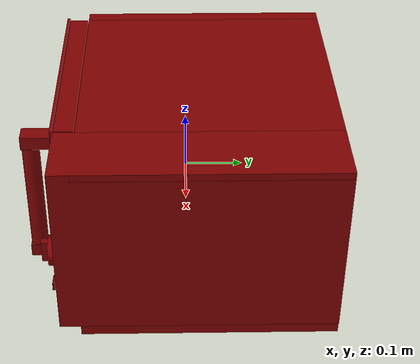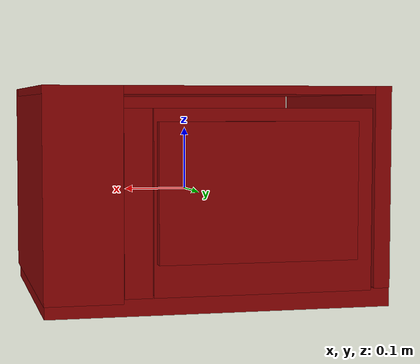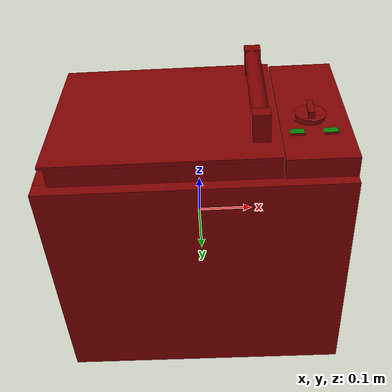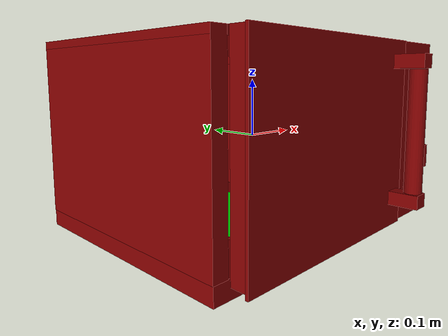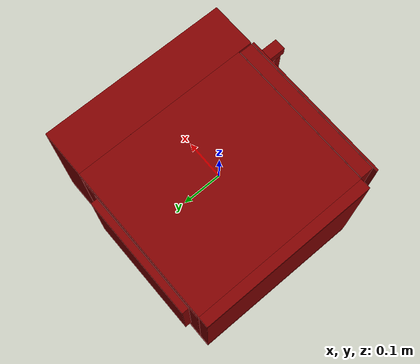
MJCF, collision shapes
<?xml version='1.0' encoding='UTF-8'?>
<mujoco model="model">
  <option timestep="0.002" gravity="0.0 0.0 -9.81"/>
  <compiler angle="radian"/>
  <asset>
    <mesh file="visuals/door.obj" name="door_vis"/>
    <mesh file="visuals/door_Clear.obj" name="door_Clear_vis"/>
    <mesh file="visuals/Body001.obj" name="Body001_vis"/>
    <mesh file="visuals/Button001.obj" name="Button001_vis"/>
    <mesh file="visuals/Button002.obj" name="Button002_vis"/>
    <mesh file="visuals/Disc001.obj" name="Disc001_vis"/>
    <mesh file="visuals/Knob001.obj" name="Knob001_vis"/>
    <texture file="visuals/T_BC001.png" name="Body001_material" type="2d"/>
    <material name="Body001_material" rgba="1 1 1 1.0" texture="Body001_material" shininess="0.4472135901451111" specular="2"/>
    <texture file="visuals/T_BC001.png" name="door_material" type="2d"/>
    <material name="door_material" rgba="1 1 1 1.0" texture="door_material" shininess="0.4472135901451111" specular="2"/>
    <material name="door_Clear_material" rgba="0.02614923194050789 0.02614923194050789 0.02614923194050789 0.8999999761581421" shininess="0.4472135901451111" specular="1"/>
    <texture file="visuals/T_BC001.png" name="Button001_material" type="2d"/>
    <material name="Button001_material" rgba="1 1 1 1.0" texture="Button001_material" shininess="0.4472135901451111" specular="1"/>
    <texture file="visuals/T_BC001.png" name="Button002_material" type="2d"/>
    <material name="Button002_material" rgba="1 1 1 1.0" texture="Button002_material" shininess="0.4472135901451111" specular="1"/>
    <texture file="visuals/T_BC001.png" name="Disc001_material" type="2d"/>
    <material name="Disc001_material" rgba="1 1 1 1.0" texture="Disc001_material" shininess="0.4472135901451111" specular="3"/>
    <texture file="visuals/T_BC001.png" name="Knob001_material" type="2d"/>
    <material name="Knob001_material" rgba="1 1 1 1.0" texture="Knob001_material" shininess="0.4472135901451111" specular="1"/>
  </asset>
  <default>
    <default class="visual">
      <geom conaffinity="0" contype="0" group="1" type="mesh"/>
    </default>
    <default class="collision">
      <geom group="0" rgba="0.5 0 0 0.5"/>
    </default>
    <default class="spawn">
      <geom group="0" rgba="1 1 1 0.5" contype="0" conaffinity="0"/>
      <site group="0" rgba="1 1 1 0.5"/>
    </default>
    <default class="region">
      <geom group="1" conaffinity="0" contype="0" rgba="0 1 0 0"/>
    </default>
  </default>
  <worldbody>
    <body>
      <body name="object">
        <geom class="collision" type="cylinder" pos="-0.06560337 -0.00000012 -0.12939638" size="0.12126452475786209 0.0008784863748587668" quat="1.0 0.0 0.0 0.0" name="tray" rgba="0 1 0 0.5"/>
        <geom class="collision" type="box" pos="0.16906899 -0.22274777 -0.08110909" size="0.011674713343381882 0.00020382273942232132 0.006713891867548227" quat="1.0 0.0 0.0 0.0" name="start_button" rgba="0.0 0.5 0 0.5"/>
        <geom class="collision" type="box" pos="0.22318500 -0.22250661 -0.08110908" size="0.011674663051962852 0.0002098405093420297 0.006713863927870989" quat="1.0 0.0 0.0 0.0" name="stop_button" rgba="0.0 0.5 0 0.5"/>
        <geom mesh="Body001_vis" type="mesh" solimp="0.998 0.998 0.001" solref="0.001 1" friction="0.95 0.3 0.1" class="visual" material="Body001_material"/>
        <geom class="collision" type="box" pos="0.20260483 0.02021611 0.00938672" size="0.057745762169361115 0.23350463807582855 0.15633134543895721" quat="1.0 0.0 0.0 0.0"/>
        <geom class="collision" type="box" pos="-0.24758852 0.03793809 0.01420471" size="0.012761605903506279 0.21578103303909302 0.15151327848434448" quat="1.0 0.0 0.0 0.0"/>
        <geom class="collision" type="box" pos="0.00000021 0.03793809 0.15949148" size="0.2603505253791809 0.21578089892864227 0.006225584540516138" quat="1.0 0.0 0.0 0.0"/>
        <geom class="collision" type="box" pos="0.12371288 0.03793808 -0.00341126" size="0.020814433693885803 0.21578072011470795 0.13651160895824432" quat="1.0 0.0 0.0 0.0"/>
        <geom class="collision" type="box" pos="-0.06453180 0.21609520 -0.00341126" size="0.1658237725496292 0.03762277588248253 0.13651145994663239" quat="1.0 0.0 0.0 0.0"/>
        <geom class="collision" type="box" pos="-0.05290046 0.26134306 0.01174506" size="0.14965619146823883 0.008506118319928646 0.10244238376617432" quat="1.0 0.0 0.0 0.0"/>
        <geom class="collision" type="box" pos="-0.00007009 0.03763168 -0.15069413" size="0.25970426201820374 0.21547333896160126 0.014608645811676979" quat="1.0 0.0 0.0 0.0"/>
        <body name="door">
          <joint axis="0.0 0.0 1.0" pos="-0.23949413 -0.19963638 0.00927292" limited="true" name="microjoint" range="-1.5707963267948966 0.0" type="hinge" damping="1" frictionloss="1" armature=".01" stiffness="0.05"/>
          <geom mesh="door_vis" type="mesh" solimp="0.998 0.998 0.001" solref="0.001 1" friction="0.95 0.3 0.1" class="visual" material="door_material"/>
          <geom class="collision" type="box" pos="-0.06565758 -0.21491098 0.01862302" size="0.146141916513443 0.0026013606693595648 0.0994877889752388" quat="1.0 0.0 0.0 0.0"/>
          <geom class="collision" type="box" pos="-0.04574286 -0.19574114 0.00922979" size="0.1876501590013504 0.016191832721233368 0.15648718178272247" quat="1.0 0.0 0.0 0.0"/>
          <geom class="collision" type="cylinder" pos="0.11001840 -0.25542687 0.01783517" size="0.014583306387066841 0.10020187497138977" quat="1.0 0.0 0.0 0.0" name="door_handle_main"/>
          <geom class="collision" type="box" pos="0.11032683 -0.24536870 0.13051552" size="0.014486672356724739 0.024532847106456757 0.011350457556545734" quat="1.0 0.0 0.0 0.0"/>
          <geom class="collision" type="box" pos="0.11032683 -0.24536870 -0.09487832" size="0.014486672356724739 0.024532847106456757 0.011350457556545734" quat="1.0 0.0 0.0 0.0"/>
          <geom class="collision" type="box" pos="-0.05075187 -0.21622051 0.00922979" size="0.1926591694355011 0.002439235569909215 0.15648718178272247" quat="1.0 0.0 0.0 0.0" name="door_main"/>
          <body name="door_Clear">
            <geom mesh="door_Clear_vis" type="mesh" solimp="0.998 0.998 0.001" solref="0.001 1" friction="0.95 0.3 0.1" class="visual" material="door_Clear_material"/>
            <geom class="collision" type="box" pos="-0.06565758 -0.21491098 0.01862302" size="0.146141916513443 0.0026013606693595648 0.0994877889752388" quat="1.0 0.0 0.0 0.0"/>
          </body>
        </body>
        <body name="Button001">
          <joint axis="0.0 1.0 0.0" pos="0.16906899 -0.21999532 -0.08110909" limited="true" name="Button001_joint" range="0.0 0.0025" type="slide" damping="1" frictionloss="1" armature=".01" stiffness="0.05"/>
          <geom mesh="Button001_vis" type="mesh" solimp="0.998 0.998 0.001" solref="0.001 1" friction="0.95 0.3 0.1" class="visual" material="Button001_material"/>
          <geom class="collision" type="box" pos="0.16906899 -0.22043614 -0.08110909" size="0.011674711480736732 0.0018939250148832798 0.006713891867548227" quat="1.0 0.0 0.0 0.0"/>
        </body>
        <body name="Button002">
          <joint axis="0.0 1.0 0.0" pos="0.22318500 -0.21999532 -0.08110909" limited="true" name="Button002_joint" range="0.0 0.0025" type="slide" damping="1" frictionloss="1" armature=".01" stiffness="0.05"/>
          <geom mesh="Button002_vis" type="mesh" solimp="0.998 0.998 0.001" solref="0.001 1" friction="0.95 0.3 0.1" class="visual" material="Button002_material"/>
          <geom class="collision" type="box" pos="0.22318500 -0.22012672 -0.08110908" size="0.011674666777253151 0.0019498449983075261 0.006713866256177425" quat="1.0 0.0 0.0 0.0"/>
        </body>
        <body name="Disc001">
          <joint axis="0.0 0.0 1.0" pos="-0.06596427 -0.00033866 -0.13303635" limited="false" name="Disc001_joint" range="0 360" type="hinge" damping="1" frictionloss="1" armature=".01" stiffness="0.05"/>
          <geom mesh="Disc001_vis" type="mesh" solimp="0.998 0.998 0.001" solref="0.001 1" friction="0.95 0.3 0.1" class="visual" material="Disc001_material"/>
          <geom class="collision" type="cylinder" pos="-0.06560337 -0.00000012 -0.13298482" size="0.12126270681619644 0.002095442730933428" quat="1.0 0.0 0.0 0.0"/>
        </body>
        <body name="Knob001">
          <joint axis="0.0 1.0 0.0" pos="0.19532475 -0.22898637 -0.03432794" limited="true" name="Knob001_joint" range="0.0 4.9043751981040655" type="hinge" damping="0.05" armature="0.5" frictionloss="0.75"/>
          <geom mesh="Knob001_vis" type="mesh" solimp="0.998 0.998 0.001" solref="0.001 1" friction="0.95 0.3 0.1" class="visual" material="Knob001_material"/>
          <geom class="collision" type="cylinder" pos="0.19523549 -0.22352615 -0.03437114" size="0.02586897648870945 0.004739708267152309" quat="0.7071067094802856 0.70710688829422 0.0 0.0" friction="100 0.5 0.01"/>
          <geom class="collision" type="box" pos="0.19523901 -0.23421751 -0.03425441" size="0.0054065329022705555 0.006193298380821943 0.019565369933843613" quat="1.0 0.0 0.0 0.0" friction="100 0.5 0.01"/>
        </body>
        <geom class="region" name="reg_int" type="box" pos="-0.06616611 -0.004037470000000001 0.011882020000000007" size="0.1666109 0.17683843999999999 0.14139992"/>
        <geom class="region" name="reg_main" type="box" pos="0.0 0.0255055 0.0" size="0.26134999 0.24534363999999997 0.16671696"/>
      <geom class="region" name="reg_tray" type="cylinder" pos="-0.06560337 -1.2e-07 0.012382023187429383" size="0.12126452475786209 0.13989991681257063"/></body>
    </body>
  </worldbody>
  <actuator>
    <motor name="microjoint_actuator" joint="microjoint" gear="10"/>
    <motor name="Button001_joint_actuator" joint="Button001_joint" gear="0.5"/>
    <motor name="Button002_joint_actuator" joint="Button002_joint" gear="0.5"/>
    <motor name="Disc001_joint_actuator" joint="Disc001_joint" gear="20"/>
    <motor name="Knob001_joint_actuator" joint="Knob001_joint" gear="10"/>
  </actuator>
</mujoco>
